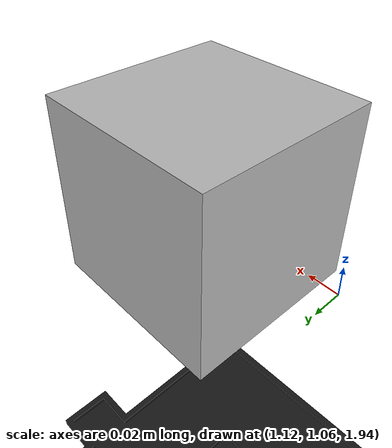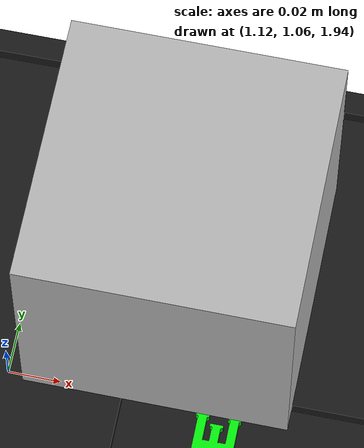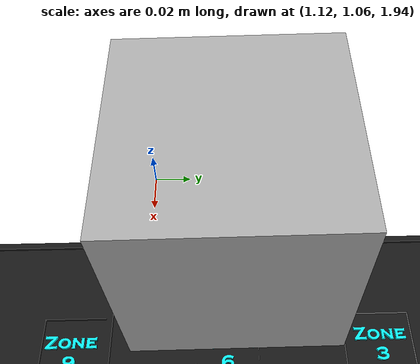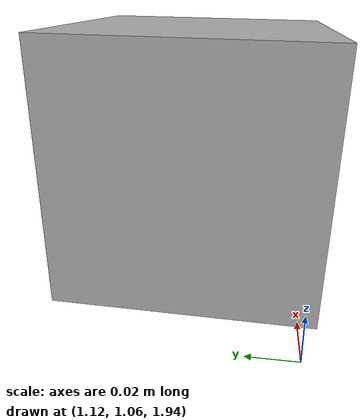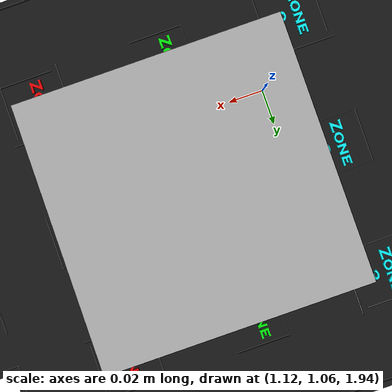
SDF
<?xml version="1.0"?>

<sdf version="1.5">
    <world name="default">
        <!-- A global light source -->
        <include>
            <uri>model://sun</uri>
        </include>

        <!-- A ground plane -->
        <include>
            <uri>model://ground_plane</uri>
        </include>
        <include>
            <uri>model://warehouse</uri>

        </include>
        <include>
            <uri>model://lifecam</uri>
        <static>true</static>
        <pose>1.177069 1.103566 2 0 0 1.57</pose>
    </include>
    </world>
</sdf>

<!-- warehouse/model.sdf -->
<sdf version='1.4'>
  <model name="warehouse">
    <static>true</static>
    <pose>1.10 1.10 0 0 0 -3.14 </pose>

    <link name="warehouse">
        <pose>0 0 0 0 0 0</pose>

    <visual name="visual">
        <geometry>
          <mesh>
                  <uri>model://warehouse/meshes/SimWarehouse.dae</uri>
                  <lighting>1</lighting>
          </mesh>
        </geometry>
      </visual>
    </link>

  </model>
</sdf>

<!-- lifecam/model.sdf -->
<sdf version="1.5">
    <model name="distorted_camera">
        <static>true</static>
        <link name='usb_cam'>
            <pose>0 0 0 0 1.552942 0</pose>
            <inertial>
                <mass>0.1</mass>
                <inertia>
                    <ixx>1</ixx>
                    <ixy>0</ixy>
                    <ixz>0</ixz>
                    <iyy>1</iyy>
                    <iyz>0</iyz>
                    <izz>1</izz>
                </inertia>
                <pose frame=''>0 0 0 0 -0 0</pose>
            </inertial>
            <collision name="collision">
                <geometry>
                    <box>
                        <size>0.1 0.1 0.1</size>
                    </box>
                </geometry>
            </collision>
            <visual name="visual">
                <geometry>
                    <box>
                        <size>0.1 0.1 0.1</size>
                    </box>
                </geometry>
            </visual>
            <self_collide>0</self_collide>
            <kinematic>0</kinematic>
            <sensor name='camera1' type='camera'>
                <camera name="head">
                    <horizontal_fov>1.7</horizontal_fov>
                    <image>
                        <width>1920</width>
                        <height>1080</height>
                        <format>R8G8B8</format>
                    </image>
                    <clip>
                        <near>0.02</near>
                        <far>300</far>
                    </clip>
                </camera>
                <always_on>1</always_on>
                <update_rate>30</update_rate>
                <visualize>1</visualize>
                <plugin name="camera_controller" filename="libgazebo_ros_camera.so">
                    <alwaysOn>true</alwaysOn>
                    <updateRate>0.0</updateRate>
                    <cameraName>camera</cameraName>
                    <imageTopicName>image_raw</imageTopicName>
                    <cameraInfoTopicName>camera_info</cameraInfoTopicName>
                    <frameName>usb_cam</frameName>
                    <hackBaseline>0.07</hackBaseline>
                    <distortionK1>0.0</distortionK1>
                    <distortionK2>0.0</distortionK2>
                    <distortionK3>0.0</distortionK3>
                    <distortionT1>0.0</distortionT1>
                    <distortionT2>0.0</distortionT2>
                </plugin>
            </sensor>
        </link>
    </model>
</sdf>
